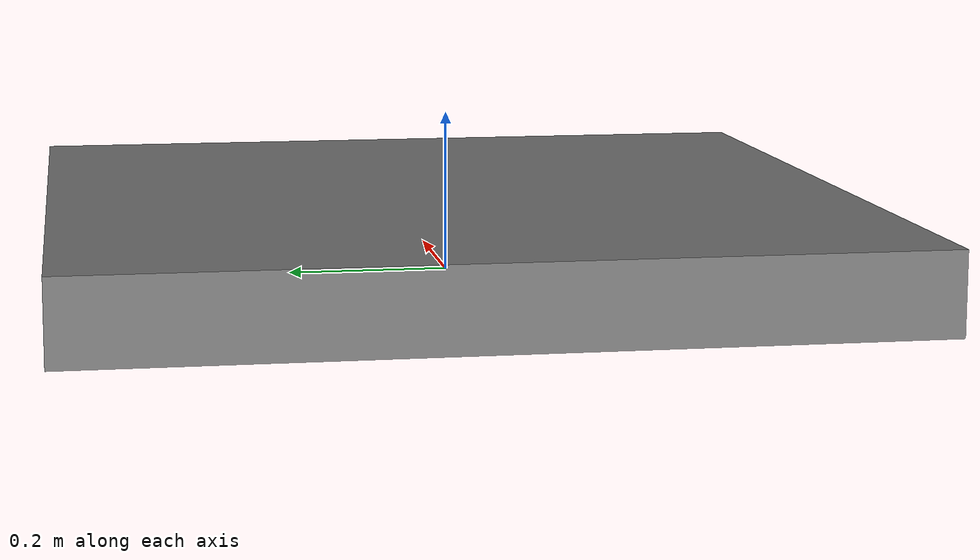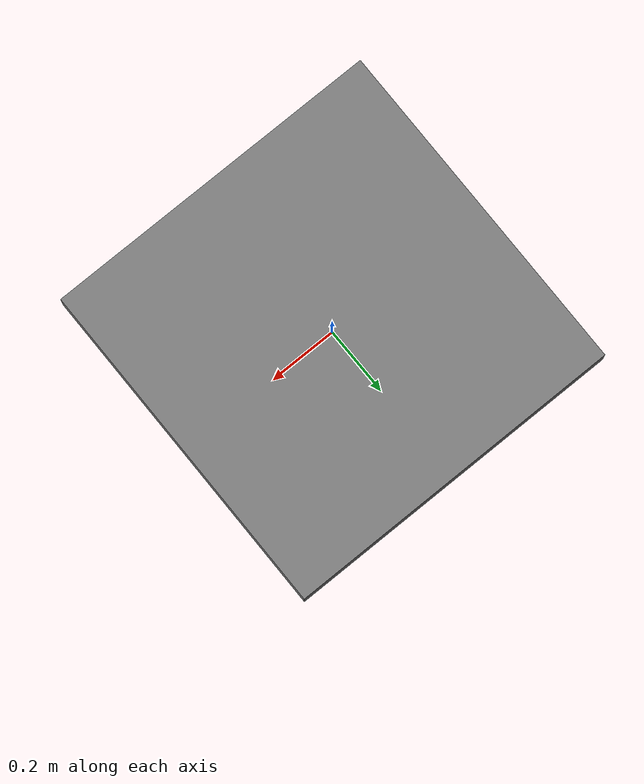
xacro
<?xml version="1.0"?>
<robot name="arms" xmlns:xacro="http://ros.org/wiki/xacro">

<link name="base_link">
    <visual>
        <geometry>
            <box size="1 1 0.1"/>
        </geometry>
        <origin xyz="0 0 0.05" rpy="0 0 0"/>
        <material name="gray"><color rgba="0.5 0.5 0.5 1"/></material>
    </visual>
</link>

<link name="print_bed">
    <visual>
        <geometry>
            <box size="0.3 0.3 0.02"/>
        </geometry>
        <origin xyz="0.2 0 0.01" rpy="0 0 0"/>
        <material name="blue"><color rgba="0 0 1 1"/></material>
    </visual>
</link>

<joint name="print_bed_joint" type="fixed">
    <parent link="base_link"/>
    <child link="print_bed"/>
    <origin xyz="0 0 0.01"/>
</joint>

</robot>
